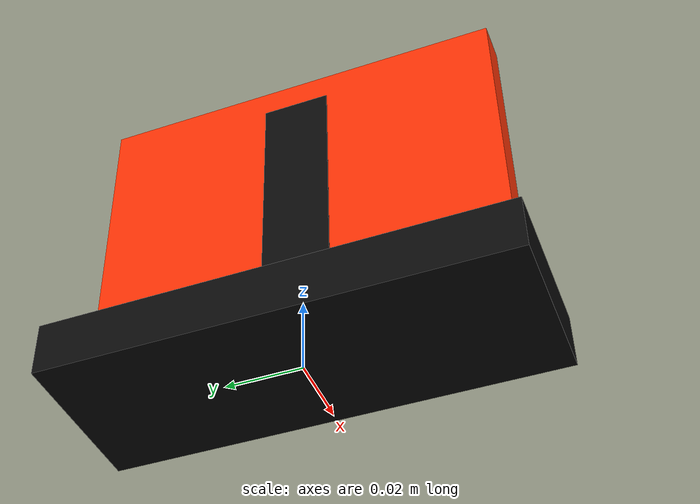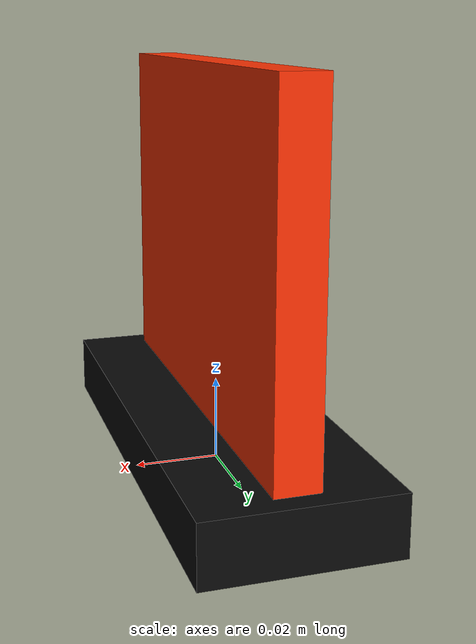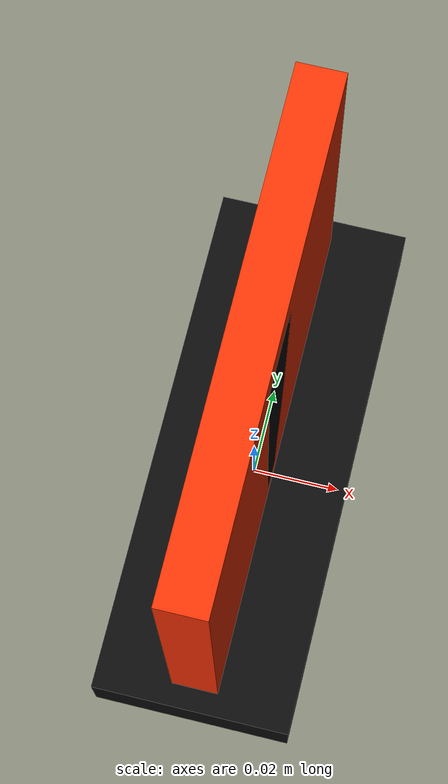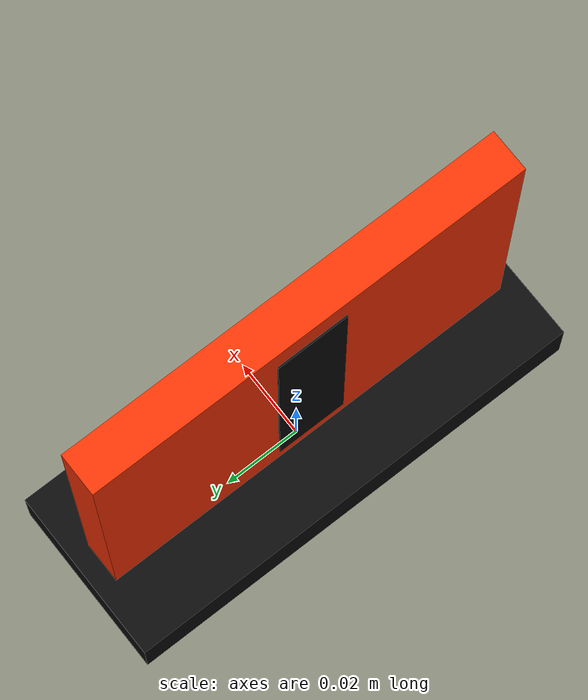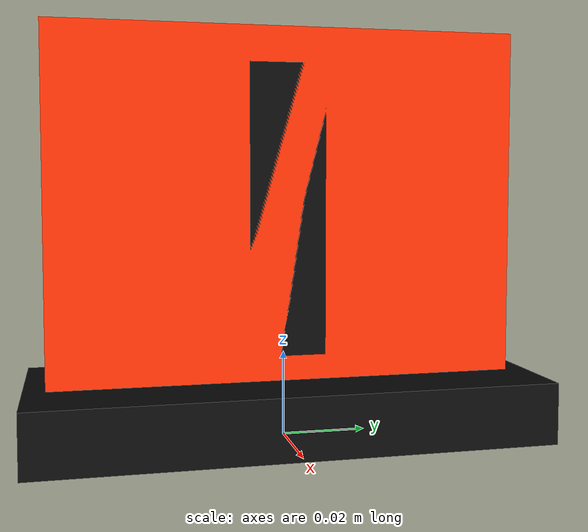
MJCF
<mujoco model="cascade_panel">
  <asset>
    <material name="cascade_panel_orange"
              rgba="1.00 0.20 0.02 1.00"
              reflectance="0.05" specular="0.15" shininess="0.10"/>
    <material name="cascade_panel_dark"
              rgba="0.04 0.04 0.04 1.00"
              reflectance="0.02" specular="0.05" shininess="0.05"/>
  </asset>
  <worldbody>
    <body>
      <body name="object">
        <!-- group 0: physical panel and wide stabilizing foot -->
        <geom name="panel_collision" type="box"
              size="0.005 0.055 0.042" pos="0 0 0.054"
              density="0.8" friction="0.60 0.20 0.05"
              group="0" rgba="0.8 0.8 0.8 0.25"
              solimp="0.998 0.998 0.001" solref="0.001 1"/>
        <geom name="foot_collision" type="box"
              size="0.022 0.060 0.007" pos="0 0 0.007"
              density="12" friction="0.75 0.25 0.05"
              group="0" rgba="0.8 0.8 0.8 0.25"
              solimp="0.998 0.998 0.001" solref="0.001 1"/>

        <!-- group 1: opaque, high-contrast policy-visible duplicates -->
        <geom name="panel_visual" type="box"
              size="0.0052 0.0552 0.0422" pos="0 0 0.054"
              contype="0" conaffinity="0" group="1"
              material="cascade_panel_orange"/>
        <geom name="foot_visual" type="box"
              size="0.0222 0.0602 0.0072" pos="0 0 0.007"
              contype="0" conaffinity="0" group="1"
              material="cascade_panel_dark"/>
        <geom name="stripe_front_visual" type="box"
              size="0.0054 0.009 0.034" pos="-0.0002 0 0.054"
              contype="0" conaffinity="0" group="1"
              material="cascade_panel_dark"/>
      </body>
      <site rgba="0 0 0 0" size="0.005" pos="0 0 0" name="bottom_site"/>
      <site rgba="0 0 0 0" size="0.005" pos="0 0 0.096" name="top_site"/>
      <site rgba="0 0 0 0" size="0.005" pos="0.060 0.060 0"
            name="horizontal_radius_site"/>
    </body>
  </worldbody>
</mujoco>
